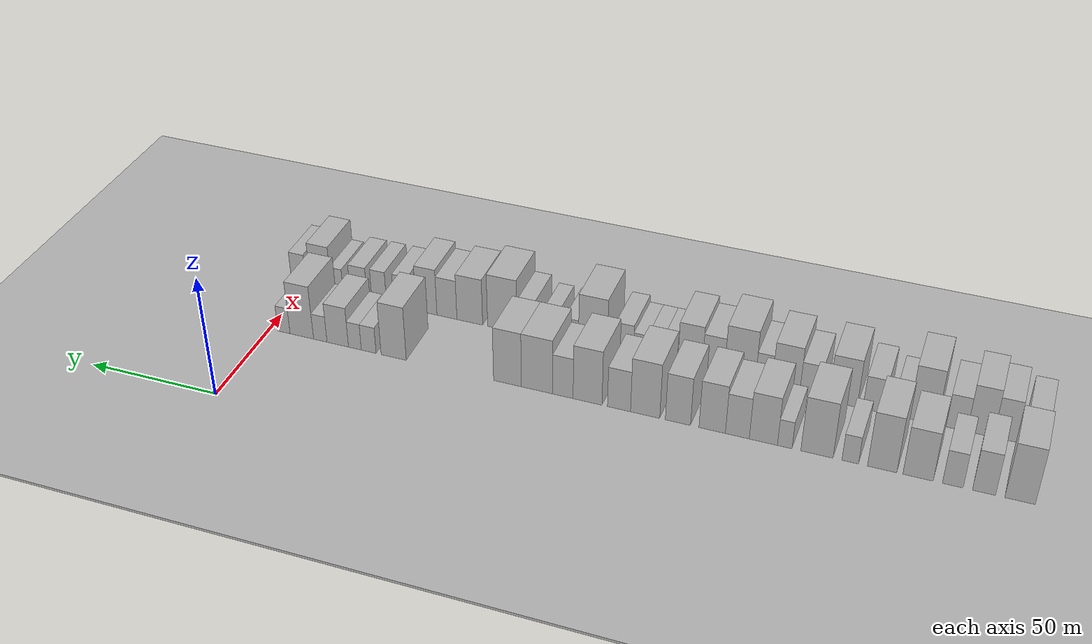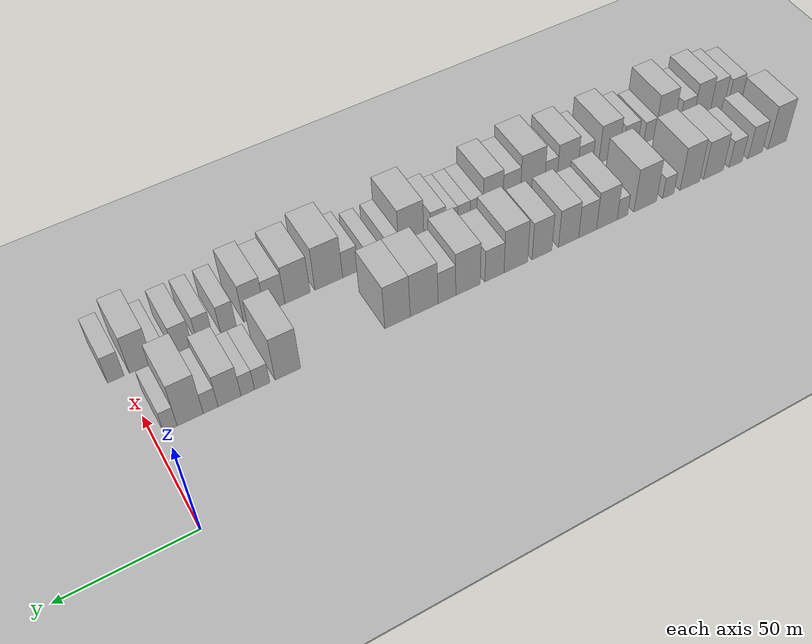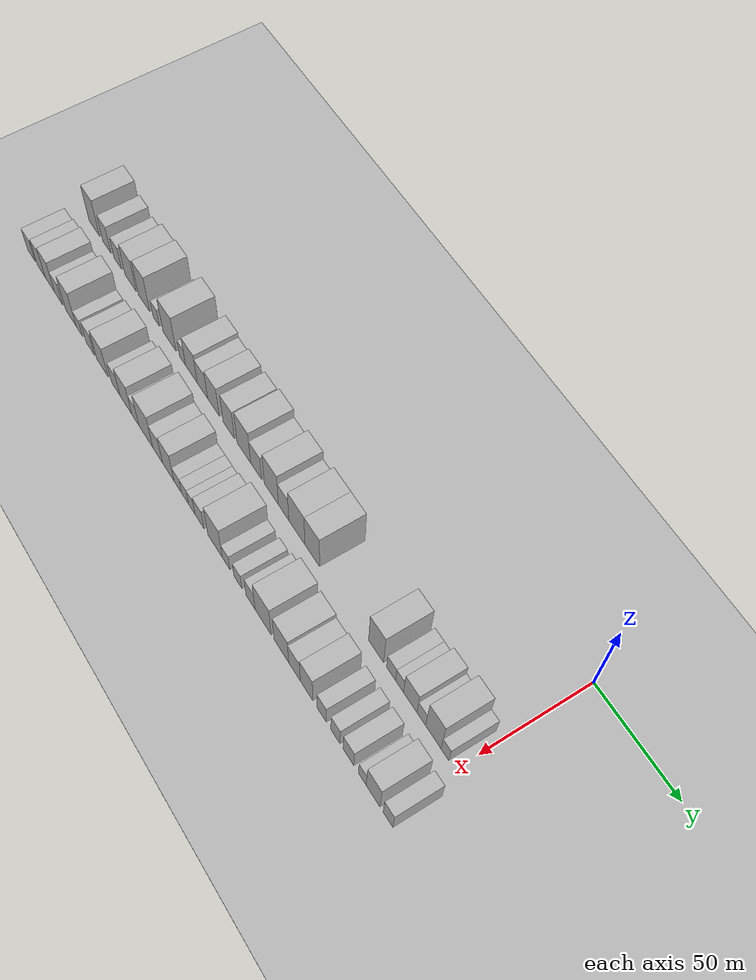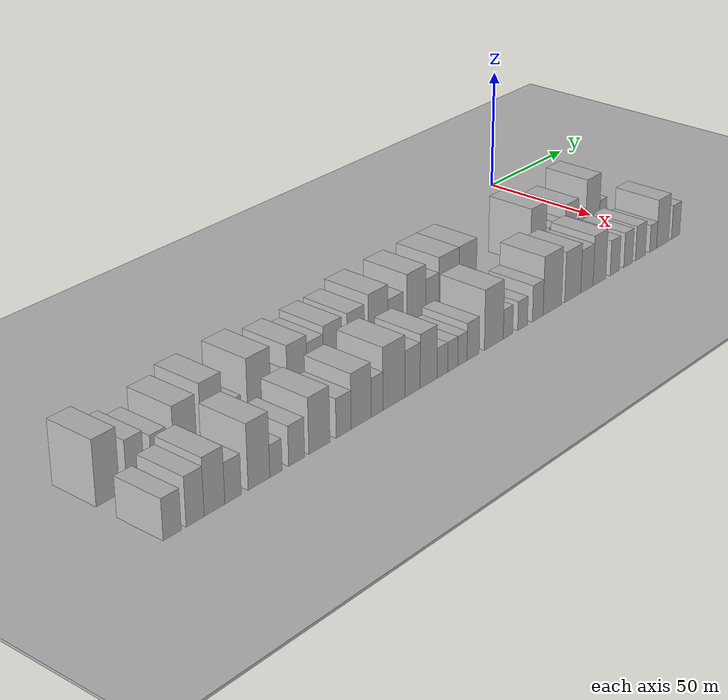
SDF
<sdf version="1.6">
 <world name="default">
  <include><name>ground_plane_1</name><uri>model://HANNAS_ground_plane</uri></include>
  <include>
   <name>ground_plane_2</name>
   <uri>model://HANNAS_ground_plane</uri>
   <pose>100 0 0  0 0 0</pose>
  </include>
  <model name="building_1">
   <static>1</static>
   <pose>50.0000 -273.1571 0 0.000000 0.000000 0.000000</pose>
   <link name="link">
    <pose>0 0 12.00 0 0 0</pose>
    <collision name="collision"><geometry><box><size>20.0000 9.6858 24.0000</size></box></geometry></collision>
    <visual name="visual">
     <cast_shadows>0</cast_shadows>
     <geometry><box><size>20.0000 9.6858 24.0000</size></box></geometry>
     <material>
      <script>
       <uri>model://HANNAS_wall/materials/scripts</uri>
       <uri>model://HANNAS_wall/materials/textures</uri>
       <name>vrc/HANNAS_wall</name>
      </script>
     </material>
    </visual>
   </link>
  </model>
  <model name="building_2">
   <static>1</static>
   <pose>50.0000 -261.5969 0 0.000000 0.000000 0.000000</pose>
   <link name="link">
    <pose>0 0 9.00 0 0 0</pose>
    <collision name="collision"><geometry><box><size>20.0000 7.4346 18.0000</size></box></geometry></collision>
    <visual name="visual">
     <cast_shadows>0</cast_shadows>
     <geometry><box><size>20.0000 7.4346 18.0000</size></box></geometry>
     <material>
      <script>
       <uri>model://HANNAS_wall/materials/scripts</uri>
       <uri>model://HANNAS_wall/materials/textures</uri>
       <name>vrc/HANNAS_wall</name>
      </script>
     </material>
    </visual>
   </link>
  </model>
  <model name="building_3">
   <static>1</static>
   <pose>50.0000 -251.5007 0 0.000000 0.000000 0.000000</pose>
   <link name="link">
    <pose>0 0 7.50 0 0 0</pose>
    <collision name="collision"><geometry><box><size>20.0000 6.7578 15.0000</size></box></geometry></collision>
    <visual name="visual">
     <cast_shadows>0</cast_shadows>
     <geometry><box><size>20.0000 6.7578 15.0000</size></box></geometry>
     <material>
      <script>
       <uri>model://HANNAS_wall/materials/scripts</uri>
       <uri>model://HANNAS_wall/materials/textures</uri>
       <name>vrc/HANNAS_wall</name>
      </script>
     </material>
    </visual>
   </link>
  </model>
  <model name="building_4">
   <static>1</static>
   <pose>50.0000 -240.1161 0 0.000000 0.000000 0.000000</pose>
   <link name="link">
    <pose>0 0 10.50 0 0 0</pose>
    <collision name="collision"><geometry><box><size>20.0000 10.0115 21.0000</size></box></geometry></collision>
    <visual name="visual">
     <cast_shadows>0</cast_shadows>
     <geometry><box><size>20.0000 10.0115 21.0000</size></box></geometry>
     <material>
      <script>
       <uri>model://HANNAS_wall/materials/scripts</uri>
       <uri>model://HANNAS_wall/materials/textures</uri>
       <name>vrc/HANNAS_wall</name>
      </script>
     </material>
    </visual>
   </link>
  </model>
  <model name="building_5">
   <static>1</static>
   <pose>50.0000 -228.2120 0 0.000000 0.000000 0.000000</pose>
   <link name="link">
    <pose>0 0 12.00 0 0 0</pose>
    <collision name="collision"><geometry><box><size>20.0000 9.7967 24.0000</size></box></geometry></collision>
    <visual name="visual">
     <cast_shadows>0</cast_shadows>
     <geometry><box><size>20.0000 9.7967 24.0000</size></box></geometry>
     <material>
      <script>
       <uri>model://HANNAS_wall/materials/scripts</uri>
       <uri>model://HANNAS_wall/materials/textures</uri>
       <name>vrc/HANNAS_wall</name>
      </script>
     </material>
    </visual>
   </link>
  </model>
  <model name="building_6">
   <static>1</static>
   <pose>50.0000 -217.5147 0 0.000000 0.000000 0.000000</pose>
   <link name="link">
    <pose>0 0 6.00 0 0 0</pose>
    <collision name="collision"><geometry><box><size>20.0000 5.5980 12.0000</size></box></geometry></collision>
    <visual name="visual">
     <cast_shadows>0</cast_shadows>
     <geometry><box><size>20.0000 5.5980 12.0000</size></box></geometry>
     <material>
      <script>
       <uri>model://HANNAS_wall/materials/scripts</uri>
       <uri>model://HANNAS_wall/materials/textures</uri>
       <name>vrc/HANNAS_wall</name>
      </script>
     </material>
    </visual>
   </link>
  </model>
  <model name="building_7">
   <static>1</static>
   <pose>50.0000 -206.2152 0 0.000000 0.000000 0.000000</pose>
   <link name="link">
    <pose>0 0 12.00 0 0 0</pose>
    <collision name="collision"><geometry><box><size>20.0000 11.0010 24.0000</size></box></geometry></collision>
    <visual name="visual">
     <cast_shadows>0</cast_shadows>
     <geometry><box><size>20.0000 11.0010 24.0000</size></box></geometry>
     <material>
      <script>
       <uri>model://HANNAS_wall/materials/scripts</uri>
       <uri>model://HANNAS_wall/materials/textures</uri>
       <name>vrc/HANNAS_wall</name>
      </script>
     </material>
    </visual>
   </link>
  </model>
  <model name="building_8">
   <static>1</static>
   <pose>50.0000 -195.1923 0 0.000000 0.000000 0.000000</pose>
   <link name="link">
    <pose>0 0 6.00 0 0 0</pose>
    <collision name="collision"><geometry><box><size>20.0000 5.0447 12.0000</size></box></geometry></collision>
    <visual name="visual">
     <cast_shadows>0</cast_shadows>
     <geometry><box><size>20.0000 5.0447 12.0000</size></box></geometry>
     <material>
      <script>
       <uri>model://HANNAS_wall/materials/scripts</uri>
       <uri>model://HANNAS_wall/materials/textures</uri>
       <name>vrc/HANNAS_wall</name>
      </script>
     </material>
    </visual>
   </link>
  </model>
  <model name="building_9">
   <static>1</static>
   <pose>50.0000 -187.7815 0 0.000000 0.000000 0.000000</pose>
   <link name="link">
    <pose>0 0 10.50 0 0 0</pose>
    <collision name="collision"><geometry><box><size>20.0000 9.7771 21.0000</size></box></geometry></collision>
    <visual name="visual">
     <cast_shadows>0</cast_shadows>
     <geometry><box><size>20.0000 9.7771 21.0000</size></box></geometry>
     <material>
      <script>
       <uri>model://HANNAS_wall/materials/scripts</uri>
       <uri>model://HANNAS_wall/materials/textures</uri>
       <name>vrc/HANNAS_wall</name>
      </script>
     </material>
    </visual>
   </link>
  </model>
  <model name="building_10">
   <static>1</static>
   <pose>50.0000 -178.7088 0 0.000000 0.000000 0.000000</pose>
   <link name="link">
    <pose>0 0 9.00 0 0 0</pose>
    <collision name="collision"><geometry><box><size>20.0000 8.3681 18.0000</size></box></geometry></collision>
    <visual name="visual">
     <cast_shadows>0</cast_shadows>
     <geometry><box><size>20.0000 8.3681 18.0000</size></box></geometry>
     <material>
      <script>
       <uri>model://HANNAS_wall/materials/scripts</uri>
       <uri>model://HANNAS_wall/materials/textures</uri>
       <name>vrc/HANNAS_wall</name>
      </script>
     </material>
    </visual>
   </link>
  </model>
  <model name="building_11">
   <static>1</static>
   <pose>50.0000 -169.8555 0 0.000000 0.000000 0.000000</pose>
   <link name="link">
    <pose>0 0 10.50 0 0 0</pose>
    <collision name="collision"><geometry><box><size>20.0000 9.3385 21.0000</size></box></geometry></collision>
    <visual name="visual">
     <cast_shadows>0</cast_shadows>
     <geometry><box><size>20.0000 9.3385 21.0000</size></box></geometry>
     <material>
      <script>
       <uri>model://HANNAS_wall/materials/scripts</uri>
       <uri>model://HANNAS_wall/materials/textures</uri>
       <name>vrc/HANNAS_wall</name>
      </script>
     </material>
    </visual>
   </link>
  </model>
  <model name="building_12">
   <static>1</static>
   <pose>50.0000 -157.6705 0 0.000000 0.000000 0.000000</pose>
   <link name="link">
    <pose>0 0 10.50 0 0 0</pose>
    <collision name="collision"><geometry><box><size>20.0000 9.0315 21.0000</size></box></geometry></collision>
    <visual name="visual">
     <cast_shadows>0</cast_shadows>
     <geometry><box><size>20.0000 9.0315 21.0000</size></box></geometry>
     <material>
      <script>
       <uri>model://HANNAS_wall/materials/scripts</uri>
       <uri>model://HANNAS_wall/materials/textures</uri>
       <name>vrc/HANNAS_wall</name>
      </script>
     </material>
    </visual>
   </link>
  </model>
  <model name="building_13">
   <static>1</static>
   <pose>50.0000 -145.8576 0 0.000000 0.000000 0.000000</pose>
   <link name="link">
    <pose>0 0 12.00 0 0 0</pose>
    <collision name="collision"><geometry><box><size>20.0000 10.5943 24.0000</size></box></geometry></collision>
    <visual name="visual">
     <cast_shadows>0</cast_shadows>
     <geometry><box><size>20.0000 10.5943 24.0000</size></box></geometry>
     <material>
      <script>
       <uri>model://HANNAS_wall/materials/scripts</uri>
       <uri>model://HANNAS_wall/materials/textures</uri>
       <name>vrc/HANNAS_wall</name>
      </script>
     </material>
    </visual>
   </link>
  </model>
  <model name="building_14">
   <static>1</static>
   <pose>50.0000 -136.3534 0 0.000000 0.000000 0.000000</pose>
   <link name="link">
    <pose>0 0 9.00 0 0 0</pose>
    <collision name="collision"><geometry><box><size>20.0000 8.4142 18.0000</size></box></geometry></collision>
    <visual name="visual">
     <cast_shadows>0</cast_shadows>
     <geometry><box><size>20.0000 8.4142 18.0000</size></box></geometry>
     <material>
      <script>
       <uri>model://HANNAS_wall/materials/scripts</uri>
       <uri>model://HANNAS_wall/materials/textures</uri>
       <name>vrc/HANNAS_wall</name>
      </script>
     </material>
    </visual>
   </link>
  </model>
  <model name="building_15">
   <static>1</static>
   <pose>50.0000 -124.7981 0 0.000000 0.000000 0.000000</pose>
   <link name="link">
    <pose>0 0 12.00 0 0 0</pose>
    <collision name="collision"><geometry><box><size>20.0000 10.6962 24.0000</size></box></geometry></collision>
    <visual name="visual">
     <cast_shadows>0</cast_shadows>
     <geometry><box><size>20.0000 10.6962 24.0000</size></box></geometry>
     <material>
      <script>
       <uri>model://HANNAS_wall/materials/scripts</uri>
       <uri>model://HANNAS_wall/materials/textures</uri>
       <name>vrc/HANNAS_wall</name>
      </script>
     </material>
    </visual>
   </link>
  </model>
  <model name="building_16">
   <static>1</static>
   <pose>50.0000 -115.6430 0 0.000000 0.000000 0.000000</pose>
   <link name="link">
    <pose>0 0 9.00 0 0 0</pose>
    <collision name="collision"><geometry><box><size>20.0000 7.6141 18.0000</size></box></geometry></collision>
    <visual name="visual">
     <cast_shadows>0</cast_shadows>
     <geometry><box><size>20.0000 7.6141 18.0000</size></box></geometry>
     <material>
      <script>
       <uri>model://HANNAS_wall/materials/scripts</uri>
       <uri>model://HANNAS_wall/materials/textures</uri>
       <name>vrc/HANNAS_wall</name>
      </script>
     </material>
    </visual>
   </link>
  </model>
  <model name="building_17">
   <static>1</static>
   <pose>50.0000 -105.9637 0 0.000000 0.000000 0.000000</pose>
   <link name="link">
    <pose>0 0 12.00 0 0 0</pose>
    <collision name="collision"><geometry><box><size>20.0000 11.7446 24.0000</size></box></geometry></collision>
    <visual name="visual">
     <cast_shadows>0</cast_shadows>
     <geometry><box><size>20.0000 11.7446 24.0000</size></box></geometry>
     <material>
      <script>
       <uri>model://HANNAS_wall/materials/scripts</uri>
       <uri>model://HANNAS_wall/materials/textures</uri>
       <name>vrc/HANNAS_wall</name>
      </script>
     </material>
    </visual>
   </link>
  </model>
  <model name="building_18">
   <static>1</static>
   <pose>50.0000 -94.8045 0 0.000000 0.000000 0.000000</pose>
   <link name="link">
    <pose>0 0 12.00 0 0 0</pose>
    <collision name="collision"><geometry><box><size>20.0000 10.5738 24.0000</size></box></geometry></collision>
    <visual name="visual">
     <cast_shadows>0</cast_shadows>
     <geometry><box><size>20.0000 10.5738 24.0000</size></box></geometry>
     <material>
      <script>
       <uri>model://HANNAS_wall/materials/scripts</uri>
       <uri>model://HANNAS_wall/materials/textures</uri>
       <name>vrc/HANNAS_wall</name>
      </script>
     </material>
    </visual>
   </link>
  </model>
  <model name="building_19">
   <static>1</static>
   <pose>50.0000 -50.5643 0 0.000000 0.000000 0.000000</pose>
   <link name="link">
    <pose>0 0 12.00 0 0 0</pose>
    <collision name="collision"><geometry><box><size>20.0000 9.9689 24.0000</size></box></geometry></collision>
    <visual name="visual">
     <cast_shadows>0</cast_shadows>
     <geometry><box><size>20.0000 9.9689 24.0000</size></box></geometry>
     <material>
      <script>
       <uri>model://HANNAS_wall/materials/scripts</uri>
       <uri>model://HANNAS_wall/materials/textures</uri>
       <name>vrc/HANNAS_wall</name>
      </script>
     </material>
    </visual>
   </link>
  </model>
  <model name="building_20">
   <static>1</static>
   <pose>50.0000 -40.6178 0 0.000000 0.000000 0.000000</pose>
   <link name="link">
    <pose>0 0 6.00 0 0 0</pose>
    <collision name="collision"><geometry><box><size>20.0000 5.9241 12.0000</size></box></geometry></collision>
    <visual name="visual">
     <cast_shadows>0</cast_shadows>
     <geometry><box><size>20.0000 5.9241 12.0000</size></box></geometry>
     <material>
      <script>
       <uri>model://HANNAS_wall/materials/scripts</uri>
       <uri>model://HANNAS_wall/materials/textures</uri>
       <name>vrc/HANNAS_wall</name>
      </script>
     </material>
    </visual>
   </link>
  </model>
  <model name="building_21">
   <static>1</static>
   <pose>50.0000 -35.0673 0 0.000000 0.000000 0.000000</pose>
   <link name="link">
    <pose>0 0 6.00 0 0 0</pose>
    <collision name="collision"><geometry><box><size>20.0000 5.1769 12.0000</size></box></geometry></collision>
    <visual name="visual">
     <cast_shadows>0</cast_shadows>
     <geometry><box><size>20.0000 5.1769 12.0000</size></box></geometry>
     <material>
      <script>
       <uri>model://HANNAS_wall/materials/scripts</uri>
       <uri>model://HANNAS_wall/materials/textures</uri>
       <name>vrc/HANNAS_wall</name>
      </script>
     </material>
    </visual>
   </link>
  </model>
  <model name="building_22">
   <static>1</static>
   <pose>50.0000 -28.1432 0 0.000000 0.000000 0.000000</pose>
   <link name="link">
    <pose>0 0 9.00 0 0 0</pose>
    <collision name="collision"><geometry><box><size>20.0000 8.6713 18.0000</size></box></geometry></collision>
    <visual name="visual">
     <cast_shadows>0</cast_shadows>
     <geometry><box><size>20.0000 8.6713 18.0000</size></box></geometry>
     <material>
      <script>
       <uri>model://HANNAS_wall/materials/scripts</uri>
       <uri>model://HANNAS_wall/materials/textures</uri>
       <name>vrc/HANNAS_wall</name>
      </script>
     </material>
    </visual>
   </link>
  </model>
  <model name="building_23">
   <static>1</static>
   <pose>50.0000 -21.0664 0 0.000000 0.000000 0.000000</pose>
   <link name="link">
    <pose>0 0 6.00 0 0 0</pose>
    <collision name="collision"><geometry><box><size>20.0000 5.4823 12.0000</size></box></geometry></collision>
    <visual name="visual">
     <cast_shadows>0</cast_shadows>
     <geometry><box><size>20.0000 5.4823 12.0000</size></box></geometry>
     <material>
      <script>
       <uri>model://HANNAS_wall/materials/scripts</uri>
       <uri>model://HANNAS_wall/materials/textures</uri>
       <name>vrc/HANNAS_wall</name>
      </script>
     </material>
    </visual>
   </link>
  </model>
  <model name="building_24">
   <static>1</static>
   <pose>50.0000 -13.5011 0 0.000000 0.000000 0.000000</pose>
   <link name="link">
    <pose>0 0 12.00 0 0 0</pose>
    <collision name="collision"><geometry><box><size>20.0000 9.6483 24.0000</size></box></geometry></collision>
    <visual name="visual">
     <cast_shadows>0</cast_shadows>
     <geometry><box><size>20.0000 9.6483 24.0000</size></box></geometry>
     <material>
      <script>
       <uri>model://HANNAS_wall/materials/scripts</uri>
       <uri>model://HANNAS_wall/materials/textures</uri>
       <name>vrc/HANNAS_wall</name>
      </script>
     </material>
    </visual>
   </link>
  </model>
  <model name="building_25">
   <static>1</static>
   <pose>50.0000 -6.1891 0 0.000000 0.000000 0.000000</pose>
   <link name="link">
    <pose>0 0 6.00 0 0 0</pose>
    <collision name="collision"><geometry><box><size>20.0000 4.9758 12.0000</size></box></geometry></collision>
    <visual name="visual">
     <cast_shadows>0</cast_shadows>
     <geometry><box><size>20.0000 4.9758 12.0000</size></box></geometry>
     <material>
      <script>
       <uri>model://HANNAS_wall/materials/scripts</uri>
       <uri>model://HANNAS_wall/materials/textures</uri>
       <name>vrc/HANNAS_wall</name>
      </script>
     </material>
    </visual>
   </link>
  </model>
  <model name="building_54">
   <static>1</static>
   <pose>79.0000 -274.2946 0 0.000000 0.000000 0.000000</pose>
   <link name="link">
    <pose>0 0 7.50 0 0 0</pose>
    <collision name="collision"><geometry><box><size>20.0000 7.4109 15.0000</size></box></geometry></collision>
    <visual name="visual">
     <cast_shadows>0</cast_shadows>
     <geometry><box><size>20.0000 7.4109 15.0000</size></box></geometry>
     <material>
      <script>
       <uri>model://HANNAS_wall/materials/scripts</uri>
       <uri>model://HANNAS_wall/materials/textures</uri>
       <name>vrc/HANNAS_wall</name>
      </script>
     </material>
    </visual>
   </link>
  </model>
  <model name="building_55">
   <static>1</static>
   <pose>79.0000 -264.8042 0 0.000000 0.000000 0.000000</pose>
   <link name="link">
    <pose>0 0 9.00 0 0 0</pose>
    <collision name="collision"><geometry><box><size>20.0000 7.5698 18.0000</size></box></geometry></collision>
    <visual name="visual">
     <cast_shadows>0</cast_shadows>
     <geometry><box><size>20.0000 7.5698 18.0000</size></box></geometry>
     <material>
      <script>
       <uri>model://HANNAS_wall/materials/scripts</uri>
       <uri>model://HANNAS_wall/materials/textures</uri>
       <name>vrc/HANNAS_wall</name>
      </script>
     </material>
    </visual>
   </link>
  </model>
  <model name="building_56">
   <static>1</static>
   <pose>79.0000 -256.5869 0 0.000000 0.000000 0.000000</pose>
   <link name="link">
    <pose>0 0 10.50 0 0 0</pose>
    <collision name="collision"><geometry><box><size>20.0000 8.8648 21.0000</size></box></geometry></collision>
    <visual name="visual">
     <cast_shadows>0</cast_shadows>
     <geometry><box><size>20.0000 8.8648 21.0000</size></box></geometry>
     <material>
      <script>
       <uri>model://HANNAS_wall/materials/scripts</uri>
       <uri>model://HANNAS_wall/materials/textures</uri>
       <name>vrc/HANNAS_wall</name>
      </script>
     </material>
    </visual>
   </link>
  </model>
  <model name="building_57">
   <static>1</static>
   <pose>79.0000 -248.5696 0 0.000000 0.000000 0.000000</pose>
   <link name="link">
    <pose>0 0 7.50 0 0 0</pose>
    <collision name="collision"><geometry><box><size>20.0000 7.1698 15.0000</size></box></geometry></collision>
    <visual name="visual">
     <cast_shadows>0</cast_shadows>
     <geometry><box><size>20.0000 7.1698 15.0000</size></box></geometry>
     <material>
      <script>
       <uri>model://HANNAS_wall/materials/scripts</uri>
       <uri>model://HANNAS_wall/materials/textures</uri>
       <name>vrc/HANNAS_wall</name>
      </script>
     </material>
    </visual>
   </link>
  </model>
  <model name="building_58">
   <static>1</static>
   <pose>79.0000 -237.1199 0 0.000000 0.000000 0.000000</pose>
   <link name="link">
    <pose>0 0 12.00 0 0 0</pose>
    <collision name="collision"><geometry><box><size>20.0000 9.7297 24.0000</size></box></geometry></collision>
    <visual name="visual">
     <cast_shadows>0</cast_shadows>
     <geometry><box><size>20.0000 9.7297 24.0000</size></box></geometry>
     <material>
      <script>
       <uri>model://HANNAS_wall/materials/scripts</uri>
       <uri>model://HANNAS_wall/materials/textures</uri>
       <name>vrc/HANNAS_wall</name>
      </script>
     </material>
    </visual>
   </link>
  </model>
  <model name="building_59">
   <static>1</static>
   <pose>79.0000 -229.4659 0 0.000000 0.000000 0.000000</pose>
   <link name="link">
    <pose>0 0 6.00 0 0 0</pose>
    <collision name="collision"><geometry><box><size>20.0000 5.5783 12.0000</size></box></geometry></collision>
    <visual name="visual">
     <cast_shadows>0</cast_shadows>
     <geometry><box><size>20.0000 5.5783 12.0000</size></box></geometry>
     <material>
      <script>
       <uri>model://HANNAS_wall/materials/scripts</uri>
       <uri>model://HANNAS_wall/materials/textures</uri>
       <name>vrc/HANNAS_wall</name>
      </script>
     </material>
    </visual>
   </link>
  </model>
  <model name="building_60">
   <static>1</static>
   <pose>79.0000 -219.9615 0 0.000000 0.000000 0.000000</pose>
   <link name="link">
    <pose>0 0 7.50 0 0 0</pose>
    <collision name="collision"><geometry><box><size>20.0000 7.4306 15.0000</size></box></geometry></collision>
    <visual name="visual">
     <cast_shadows>0</cast_shadows>
     <geometry><box><size>20.0000 7.4306 15.0000</size></box></geometry>
     <material>
      <script>
       <uri>model://HANNAS_wall/materials/scripts</uri>
       <uri>model://HANNAS_wall/materials/textures</uri>
       <name>vrc/HANNAS_wall</name>
      </script>
     </material>
    </visual>
   </link>
  </model>
  <model name="building_61">
   <static>1</static>
   <pose>79.0000 -209.2085 0 0.000000 0.000000 0.000000</pose>
   <link name="link">
    <pose>0 0 10.50 0 0 0</pose>
    <collision name="collision"><geometry><box><size>20.0000 10.0754 21.0000</size></box></geometry></collision>
    <visual name="visual">
     <cast_shadows>0</cast_shadows>
     <geometry><box><size>20.0000 10.0754 21.0000</size></box></geometry>
     <material>
      <script>
       <uri>model://HANNAS_wall/materials/scripts</uri>
       <uri>model://HANNAS_wall/materials/textures</uri>
       <name>vrc/HANNAS_wall</name>
      </script>
     </material>
    </visual>
   </link>
  </model>
  <model name="building_62">
   <static>1</static>
   <pose>79.0000 -197.4752 0 0.000000 0.000000 0.000000</pose>
   <link name="link">
    <pose>0 0 7.50 0 0 0</pose>
    <collision name="collision"><geometry><box><size>20.0000 7.3913 15.0000</size></box></geometry></collision>
    <visual name="visual">
     <cast_shadows>0</cast_shadows>
     <geometry><box><size>20.0000 7.3913 15.0000</size></box></geometry>
     <material>
      <script>
       <uri>model://HANNAS_wall/materials/scripts</uri>
       <uri>model://HANNAS_wall/materials/textures</uri>
       <name>vrc/HANNAS_wall</name>
      </script>
     </material>
    </visual>
   </link>
  </model>
  <model name="building_63">
   <static>1</static>
   <pose>79.0000 -188.7774 0 0.000000 0.000000 0.000000</pose>
   <link name="link">
    <pose>0 0 10.50 0 0 0</pose>
    <collision name="collision"><geometry><box><size>20.0000 10.0043 21.0000</size></box></geometry></collision>
    <visual name="visual">
     <cast_shadows>0</cast_shadows>
     <geometry><box><size>20.0000 10.0043 21.0000</size></box></geometry>
     <material>
      <script>
       <uri>model://HANNAS_wall/materials/scripts</uri>
       <uri>model://HANNAS_wall/materials/textures</uri>
       <name>vrc/HANNAS_wall</name>
      </script>
     </material>
    </visual>
   </link>
  </model>
  <model name="building_64">
   <static>1</static>
   <pose>79.0000 -180.7704 0 0.000000 0.000000 0.000000</pose>
   <link name="link">
    <pose>0 0 7.50 0 0 0</pose>
    <collision name="collision"><geometry><box><size>20.0000 6.0098 15.0000</size></box></geometry></collision>
    <visual name="visual">
     <cast_shadows>0</cast_shadows>
     <geometry><box><size>20.0000 6.0098 15.0000</size></box></geometry>
     <material>
      <script>
       <uri>model://HANNAS_wall/materials/scripts</uri>
       <uri>model://HANNAS_wall/materials/textures</uri>
       <name>vrc/HANNAS_wall</name>
      </script>
     </material>
    </visual>
   </link>
  </model>
  <model name="building_65">
   <static>1</static>
   <pose>79.0000 -172.0708 0 0.000000 0.000000 0.000000</pose>
   <link name="link">
    <pose>0 0 12.00 0 0 0</pose>
    <collision name="collision"><geometry><box><size>20.0000 11.3893 24.0000</size></box></geometry></collision>
    <visual name="visual">
     <cast_shadows>0</cast_shadows>
     <geometry><box><size>20.0000 11.3893 24.0000</size></box></geometry>
     <material>
      <script>
       <uri>model://HANNAS_wall/materials/scripts</uri>
       <uri>model://HANNAS_wall/materials/textures</uri>
       <name>vrc/HANNAS_wall</name>
      </script>
     </material>
    </visual>
   </link>
  </model>
  <model name="building_66">
   <static>1</static>
   <pose>79.0000 -162.3232 0 0.000000 0.000000 0.000000</pose>
   <link name="link">
    <pose>0 0 9.00 0 0 0</pose>
    <collision name="collision"><geometry><box><size>20.0000 8.1060 18.0000</size></box></geometry></collision>
    <visual name="visual">
     <cast_shadows>0</cast_shadows>
     <geometry><box><size>20.0000 8.1060 18.0000</size></box></geometry>
     <material>
      <script>
       <uri>model://HANNAS_wall/materials/scripts</uri>
       <uri>model://HANNAS_wall/materials/textures</uri>
       <name>vrc/HANNAS_wall</name>
      </script>
     </material>
    </visual>
   </link>
  </model>
  <model name="building_67">
   <static>1</static>
   <pose>79.0000 -153.6999 0 0.000000 0.000000 0.000000</pose>
   <link name="link">
    <pose>0 0 10.50 0 0 0</pose>
    <collision name="collision"><geometry><box><size>20.0000 9.1406 21.0000</size></box></geometry></collision>
    <visual name="visual">
     <cast_shadows>0</cast_shadows>
     <geometry><box><size>20.0000 9.1406 21.0000</size></box></geometry>
     <material>
      <script>
       <uri>model://HANNAS_wall/materials/scripts</uri>
       <uri>model://HANNAS_wall/materials/textures</uri>
       <name>vrc/HANNAS_wall</name>
      </script>
     </material>
    </visual>
   </link>
  </model>
  <model name="building_68">
   <static>1</static>
   <pose>79.0000 -146.1741 0 0.000000 0.000000 0.000000</pose>
   <link name="link">
    <pose>0 0 6.00 0 0 0</pose>
    <collision name="collision"><geometry><box><size>20.0000 5.9110 12.0000</size></box></geometry></collision>
    <visual name="visual">
     <cast_shadows>0</cast_shadows>
     <geometry><box><size>20.0000 5.9110 12.0000</size></box></geometry>
     <material>
      <script>
       <uri>model://HANNAS_wall/materials/scripts</uri>
       <uri>model://HANNAS_wall/materials/textures</uri>
       <name>vrc/HANNAS_wall</name>
      </script>
     </material>
    </visual>
   </link>
  </model>
  <model name="building_69">
   <static>1</static>
   <pose>79.0000 -140.4228 0 0.000000 0.000000 0.000000</pose>
   <link name="link">
    <pose>0 0 6.00 0 0 0</pose>
    <collision name="collision"><geometry><box><size>20.0000 5.5918 12.0000</size></box></geometry></collision>
    <visual name="visual">
     <cast_shadows>0</cast_shadows>
     <geometry><box><size>20.0000 5.5918 12.0000</size></box></geometry>
     <material>
      <script>
       <uri>model://HANNAS_wall/materials/scripts</uri>
       <uri>model://HANNAS_wall/materials/textures</uri>
       <name>vrc/HANNAS_wall</name>
      </script>
     </material>
    </visual>
   </link>
  </model>
  <model name="building_70">
   <static>1</static>
   <pose>79.0000 -135.0442 0 0.000000 0.000000 0.000000</pose>
   <link name="link">
    <pose>0 0 6.00 0 0 0</pose>
    <collision name="collision"><geometry><box><size>20.0000 5.1655 12.0000</size></box></geometry></collision>
    <visual name="visual">
     <cast_shadows>0</cast_shadows>
     <geometry><box><size>20.0000 5.1655 12.0000</size></box></geometry>
     <material>
      <script>
       <uri>model://HANNAS_wall/materials/scripts</uri>
       <uri>model://HANNAS_wall/materials/textures</uri>
       <name>vrc/HANNAS_wall</name>
      </script>
     </material>
    </visual>
   </link>
  </model>
  <model name="building_71">
   <static>1</static>
   <pose>79.0000 -129.0151 0 0.000000 0.000000 0.000000</pose>
   <link name="link">
    <pose>0 0 7.50 0 0 0</pose>
    <collision name="collision"><geometry><box><size>20.0000 6.8928 15.0000</size></box></geometry></collision>
    <visual name="visual">
     <cast_shadows>0</cast_shadows>
     <geometry><box><size>20.0000 6.8928 15.0000</size></box></geometry>
     <material>
      <script>
       <uri>model://HANNAS_wall/materials/scripts</uri>
       <uri>model://HANNAS_wall/materials/textures</uri>
       <name>vrc/HANNAS_wall</name>
      </script>
     </material>
    </visual>
   </link>
  </model>
  <model name="building_72">
   <static>1</static>
   <pose>79.0000 -117.0316 0 0.000000 0.000000 0.000000</pose>
   <link name="link">
    <pose>0 0 12.00 0 0 0</pose>
    <collision name="collision"><geometry><box><size>20.0000 11.0741 24.0000</size></box></geometry></collision>
    <visual name="visual">
     <cast_shadows>0</cast_shadows>
     <geometry><box><size>20.0000 11.0741 24.0000</size></box></geometry>
     <material>
      <script>
       <uri>model://HANNAS_wall/materials/scripts</uri>
       <uri>model://HANNAS_wall/materials/textures</uri>
       <name>vrc/HANNAS_wall</name>
      </script>
     </material>
    </visual>
   </link>
  </model>
  <model name="building_73">
   <static>1</static>
   <pose>79.0000 -108.6896 0 0.000000 0.000000 0.000000</pose>
   <link name="link">
    <pose>0 0 6.00 0 0 0</pose>
    <collision name="collision"><geometry><box><size>20.0000 5.6100 12.0000</size></box></geometry></collision>
    <visual name="visual">
     <cast_shadows>0</cast_shadows>
     <geometry><box><size>20.0000 5.6100 12.0000</size></box></geometry>
     <material>
      <script>
       <uri>model://HANNAS_wall/materials/scripts</uri>
       <uri>model://HANNAS_wall/materials/textures</uri>
       <name>vrc/HANNAS_wall</name>
      </script>
     </material>
    </visual>
   </link>
  </model>
  <model name="building_74">
   <static>1</static>
   <pose>79.0000 -99.9310 0 0.000000 0.000000 0.000000</pose>
   <link name="link">
    <pose>0 0 6.00 0 0 0</pose>
    <collision name="collision"><geometry><box><size>20.0000 5.9072 12.0000</size></box></geometry></collision>
    <visual name="visual">
     <cast_shadows>0</cast_shadows>
     <geometry><box><size>20.0000 5.9072 12.0000</size></box></geometry>
     <material>
      <script>
       <uri>model://HANNAS_wall/materials/scripts</uri>
       <uri>model://HANNAS_wall/materials/textures</uri>
       <name>vrc/HANNAS_wall</name>
      </script>
     </material>
    </visual>
   </link>
  </model>
  <model name="building_75">
   <static>1</static>
   <pose>79.0000 -90.6768 0 0.000000 0.000000 0.000000</pose>
   <link name="link">
    <pose>0 0 7.50 0 0 0</pose>
    <collision name="collision"><geometry><box><size>20.0000 6.6011 15.0000</size></box></geometry></collision>
    <visual name="visual">
     <cast_shadows>0</cast_shadows>
     <geometry><box><size>20.0000 6.6011 15.0000</size></box></geometry>
     <material>
      <script>
       <uri>model://HANNAS_wall/materials/scripts</uri>
       <uri>model://HANNAS_wall/materials/textures</uri>
       <name>vrc/HANNAS_wall</name>
      </script>
     </material>
    </visual>
   </link>
  </model>
  <model name="building_76">
   <static>1</static>
   <pose>79.0000 -81.5698 0 0.000000 0.000000 0.000000</pose>
   <link name="link">
    <pose>0 0 12.00 0 0 0</pose>
    <collision name="collision"><geometry><box><size>20.0000 11.6129 24.0000</size></box></geometry></collision>
    <visual name="visual">
     <cast_shadows>0</cast_shadows>
     <geometry><box><size>20.0000 11.6129 24.0000</size></box></geometry>
     <material>
      <script>
       <uri>model://HANNAS_wall/materials/scripts</uri>
       <uri>model://HANNAS_wall/materials/textures</uri>
       <name>vrc/HANNAS_wall</name>
      </script>
     </material>
    </visual>
   </link>
  </model>
  <model name="building_77">
   <static>1</static>
   <pose>79.0000 -68.5809 0 0.000000 0.000000 0.000000</pose>
   <link name="link">
    <pose>0 0 10.50 0 0 0</pose>
    <collision name="collision"><geometry><box><size>20.0000 10.3649 21.0000</size></box></geometry></collision>
    <visual name="visual">
     <cast_shadows>0</cast_shadows>
     <geometry><box><size>20.0000 10.3649 21.0000</size></box></geometry>
     <material>
      <script>
       <uri>model://HANNAS_wall/materials/scripts</uri>
       <uri>model://HANNAS_wall/materials/textures</uri>
       <name>vrc/HANNAS_wall</name>
      </script>
     </material>
    </visual>
   </link>
  </model>
  <model name="building_78">
   <static>1</static>
   <pose>79.0000 -59.3526 0 0.000000 0.000000 0.000000</pose>
   <link name="link">
    <pose>0 0 9.00 0 0 0</pose>
    <collision name="collision"><geometry><box><size>20.0000 8.0917 18.0000</size></box></geometry></collision>
    <visual name="visual">
     <cast_shadows>0</cast_shadows>
     <geometry><box><size>20.0000 8.0917 18.0000</size></box></geometry>
     <material>
      <script>
       <uri>model://HANNAS_wall/materials/scripts</uri>
       <uri>model://HANNAS_wall/materials/textures</uri>
       <name>vrc/HANNAS_wall</name>
      </script>
     </material>
    </visual>
   </link>
  </model>
  <model name="building_79">
   <static>1</static>
   <pose>79.0000 -51.0601 0 0.000000 0.000000 0.000000</pose>
   <link name="link">
    <pose>0 0 10.50 0 0 0</pose>
    <collision name="collision"><geometry><box><size>20.0000 8.4934 21.0000</size></box></geometry></collision>
    <visual name="visual">
     <cast_shadows>0</cast_shadows>
     <geometry><box><size>20.0000 8.4934 21.0000</size></box></geometry>
     <material>
      <script>
       <uri>model://HANNAS_wall/materials/scripts</uri>
       <uri>model://HANNAS_wall/materials/textures</uri>
       <name>vrc/HANNAS_wall</name>
      </script>
     </material>
    </visual>
   </link>
  </model>
  <model name="building_80">
   <static>1</static>
   <pose>79.0000 -40.6955 0 0.000000 0.000000 0.000000</pose>
   <link name="link">
    <pose>0 0 7.50 0 0 0</pose>
    <collision name="collision"><geometry><box><size>20.0000 6.2358 15.0000</size></box></geometry></collision>
    <visual name="visual">
     <cast_shadows>0</cast_shadows>
     <geometry><box><size>20.0000 6.2358 15.0000</size></box></geometry>
     <material>
      <script>
       <uri>model://HANNAS_wall/materials/scripts</uri>
       <uri>model://HANNAS_wall/materials/textures</uri>
       <name>vrc/HANNAS_wall</name>
      </script>
     </material>
    </visual>
   </link>
  </model>
  <model name="building_81">
   <static>1</static>
   <pose>79.0000 -31.5392 0 0.000000 0.000000 0.000000</pose>
   <link name="link">
    <pose>0 0 7.50 0 0 0</pose>
    <collision name="collision"><geometry><box><size>20.0000 6.0767 15.0000</size></box></geometry></collision>
    <visual name="visual">
     <cast_shadows>0</cast_shadows>
     <geometry><box><size>20.0000 6.0767 15.0000</size></box></geometry>
     <material>
      <script>
       <uri>model://HANNAS_wall/materials/scripts</uri>
       <uri>model://HANNAS_wall/materials/textures</uri>
       <name>vrc/HANNAS_wall</name>
      </script>
     </material>
    </visual>
   </link>
  </model>
  <model name="building_82">
   <static>1</static>
   <pose>79.0000 -22.9924 0 0.000000 0.000000 0.000000</pose>
   <link name="link">
    <pose>0 0 7.50 0 0 0</pose>
    <collision name="collision"><geometry><box><size>20.0000 7.0168 15.0000</size></box></geometry></collision>
    <visual name="visual">
     <cast_shadows>0</cast_shadows>
     <geometry><box><size>20.0000 7.0168 15.0000</size></box></geometry>
     <material>
      <script>
       <uri>model://HANNAS_wall/materials/scripts</uri>
       <uri>model://HANNAS_wall/materials/textures</uri>
       <name>vrc/HANNAS_wall</name>
      </script>
     </material>
    </visual>
   </link>
  </model>
  <model name="building_83">
   <static>1</static>
   <pose>79.0000 -13.9951 0 0.000000 0.000000 0.000000</pose>
   <link name="link">
    <pose>0 0 6.00 0 0 0</pose>
    <collision name="collision"><geometry><box><size>20.0000 4.9779 12.0000</size></box></geometry></collision>
    <visual name="visual">
     <cast_shadows>0</cast_shadows>
     <geometry><box><size>20.0000 4.9779 12.0000</size></box></geometry>
     <material>
      <script>
       <uri>model://HANNAS_wall/materials/scripts</uri>
       <uri>model://HANNAS_wall/materials/textures</uri>
       <name>vrc/HANNAS_wall</name>
      </script>
     </material>
    </visual>
   </link>
  </model>
  <model name="building_84">
   <static>1</static>
   <pose>79.0000 -7.1013 0 0.000000 0.000000 0.000000</pose>
   <link name="link">
    <pose>0 0 10.50 0 0 0</pose>
    <collision name="collision"><geometry><box><size>20.0000 8.8096 21.0000</size></box></geometry></collision>
    <visual name="visual">
     <cast_shadows>0</cast_shadows>
     <geometry><box><size>20.0000 8.8096 21.0000</size></box></geometry>
     <material>
      <script>
       <uri>model://HANNAS_wall/materials/scripts</uri>
       <uri>model://HANNAS_wall/materials/textures</uri>
       <name>vrc/HANNAS_wall</name>
      </script>
     </material>
    </visual>
   </link>
  </model>
  <model name="building_85">
   <static>1</static>
   <pose>79.0000 2.3658 0 0.000000 0.000000 0.000000</pose>
   <link name="link">
    <pose>0 0 7.50 0 0 0</pose>
    <collision name="collision"><geometry><box><size>20.0000 6.1248 15.0000</size></box></geometry></collision>
    <visual name="visual">
     <cast_shadows>0</cast_shadows>
     <geometry><box><size>20.0000 6.1248 15.0000</size></box></geometry>
     <material>
      <script>
       <uri>model://HANNAS_wall/materials/scripts</uri>
       <uri>model://HANNAS_wall/materials/textures</uri>
       <name>vrc/HANNAS_wall</name>
      </script>
     </material>
    </visual>
   </link>
  </model>
 </world>
</sdf>
